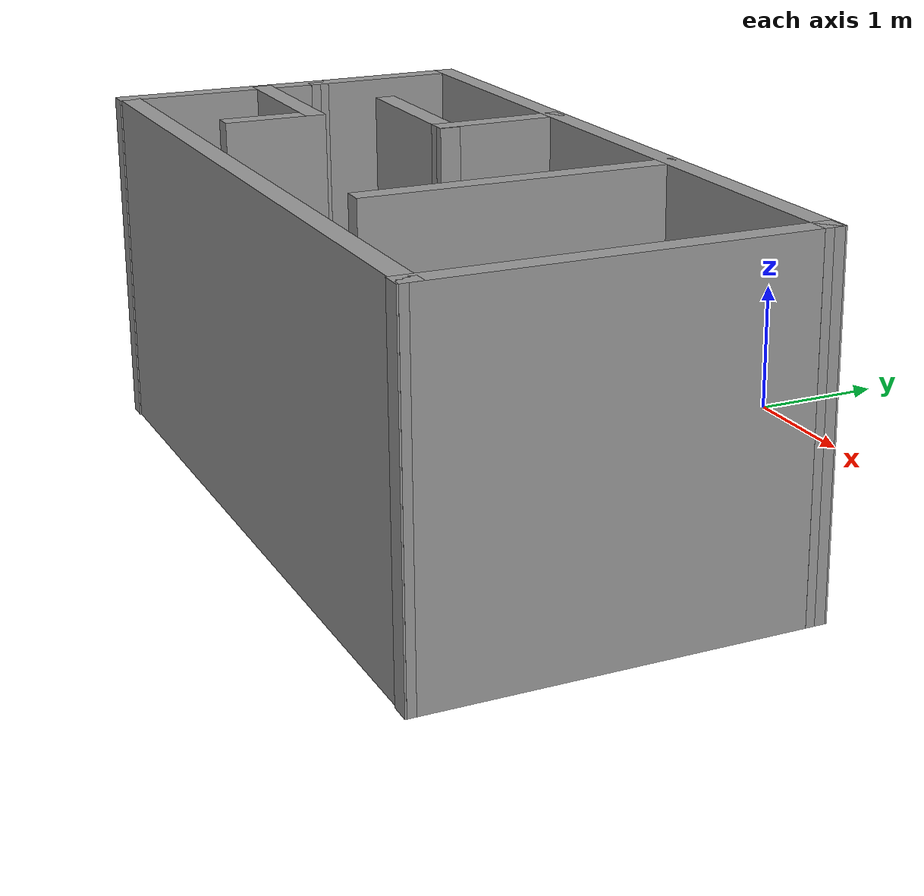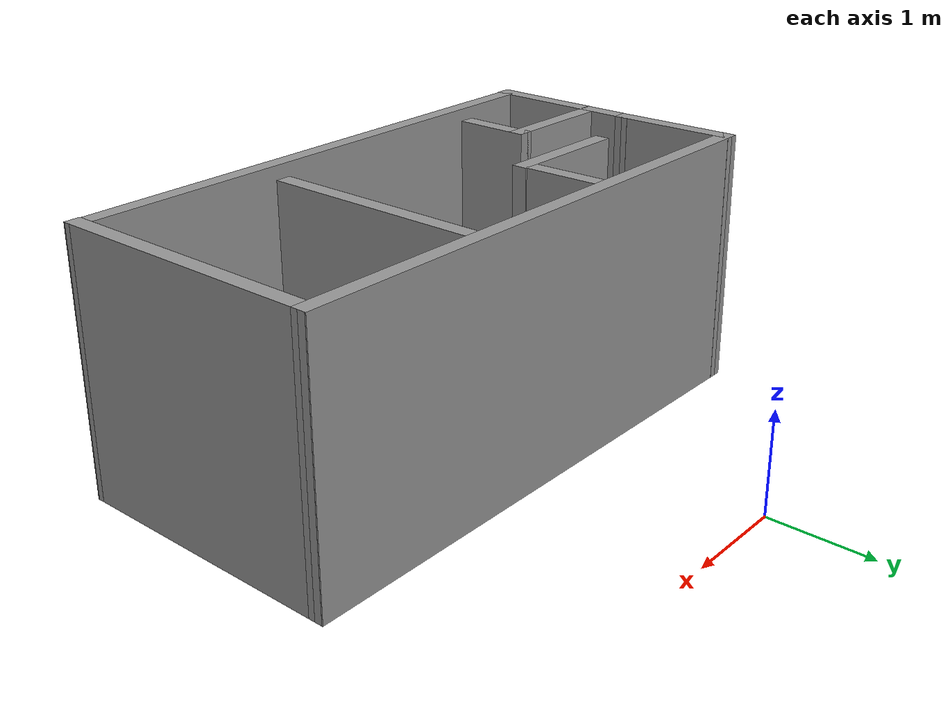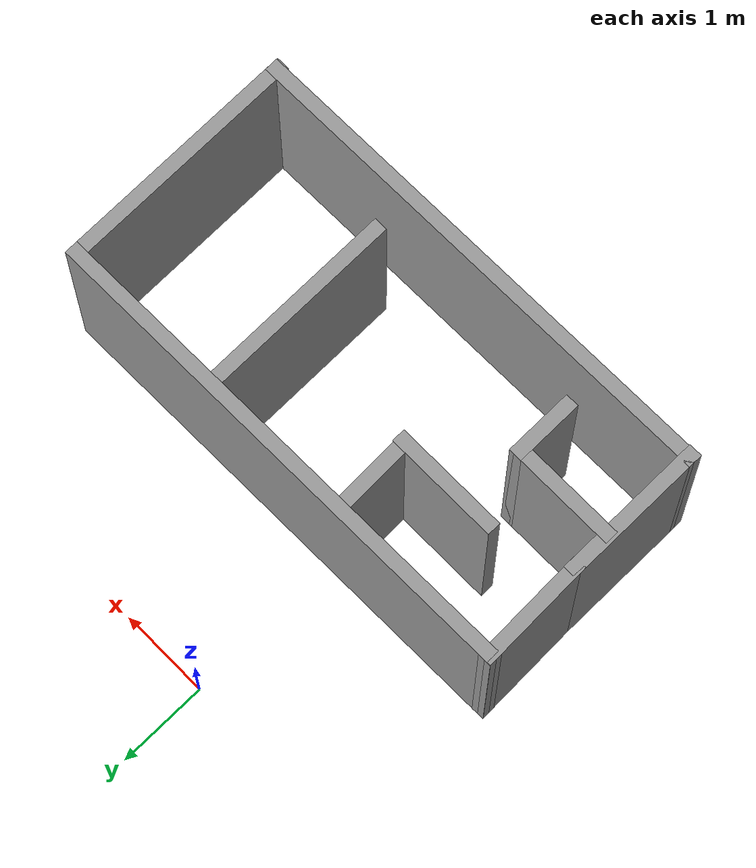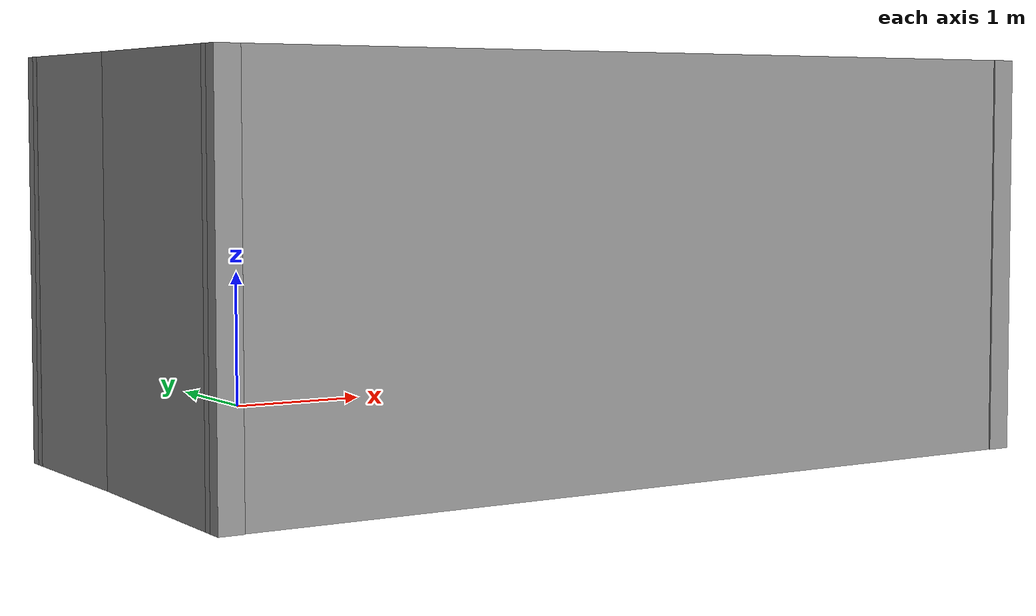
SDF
<?xml version='1.0'?>
<sdf version='1.7'>
  <model name='room'>
    <pose>0.647866 -2.2675 0 0 -0 0</pose>
    <link name='Wall_0'>
      <collision name='Wall_0_Collision'>
        <geometry>
          <box>
            <size>1.2704 0.15 2.5</size>
          </box>
        </geometry>
        <pose>0 0 1.25 0 -0 0</pose>
      </collision>
      <visual name='Wall_0_Visual'>
        <pose>0 0 1.25 0 -0 0</pose>
        <geometry>
          <box>
            <size>1.2704 0.15 2.5</size>
          </box>
        </geometry>
        <material>
          <script>
            <uri>file://media/materials/scripts/gazebo.material</uri>
            <name>Gazebo/Grey</name>
          </script>
          <ambient>1 1 1 1</ambient>
        </material>
        <meta>
          <layer>0</layer>
        </meta>
      </visual>
      <pose>-2.69287 -0.1225 0 0 -0 1.59758</pose>
    </link>
    <link name='Wall_1'>
      <collision name='Wall_1_Collision'>
        <geometry>
          <box>
            <size>5.56701 0.15 2.5</size>
          </box>
        </geometry>
        <pose>0 0 1.25 0 -0 0</pose>
      </collision>
      <visual name='Wall_1_Visual'>
        <pose>0 0 1.25 0 -0 0</pose>
        <geometry>
          <box>
            <size>5.56701 0.15 2.5</size>
          </box>
        </geometry>
        <material>
          <script>
            <uri>file://media/materials/scripts/gazebo.material</uri>
            <name>Gazebo/Grey</name>
          </script>
          <ambient>1 1 1 1</ambient>
        </material>
        <meta>
          <layer>0</layer>
        </meta>
      </visual>
      <pose>0.000634 0.4605 0 0 -0 0.008492</pose>
    </link>
    <link name='Wall_10'>
      <collision name='Wall_10_Collision'>
        <geometry>
          <box>
            <size>0.75 0.15 2.5</size>
          </box>
        </geometry>
        <pose>0 0 1.25 0 -0 0</pose>
      </collision>
      <visual name='Wall_10_Visual'>
        <pose>0 0 1.25 0 -0 0</pose>
        <geometry>
          <box>
            <size>0.75 0.15 2.5</size>
          </box>
        </geometry>
        <material>
          <script>
            <uri>file://media/materials/scripts/gazebo.material</uri>
            <name>Gazebo/Grey</name>
          </script>
          <ambient>1 1 1 1</ambient>
        </material>
        <meta>
          <layer>0</layer>
        </meta>
      </visual>
      <pose>-1.54787 -1.4225 0 0 -0 -1.5708</pose>
    </link>
    <link name='Wall_12'>
      <collision name='Wall_12_Collision'>
        <geometry>
          <box>
            <size>2.25 0.15 2.5</size>
          </box>
        </geometry>
        <pose>0 0 1.25 0 -0 0</pose>
      </collision>
      <visual name='Wall_12_Visual'>
        <pose>0 0 1.25 0 -0 0</pose>
        <geometry>
          <box>
            <size>2.25 0.15 2.5</size>
          </box>
        </geometry>
        <material>
          <script>
            <uri>file://media/materials/scripts/gazebo.material</uri>
            <name>Gazebo/Grey</name>
          </script>
          <ambient>1 1 1 1</ambient>
        </material>
        <meta>
          <layer>0</layer>
        </meta>
      </visual>
      <pose>0.915833 -0.615975 0 0 -0 -1.5708</pose>
    </link>
    <link name='Wall_2'>
      <collision name='Wall_2_Collision'>
        <geometry>
          <box>
            <size>2.75 0.15 2.5</size>
          </box>
        </geometry>
        <pose>0 0 1.25 0 -0 0</pose>
      </collision>
      <visual name='Wall_2_Visual'>
        <pose>0 0 1.25 0 -0 0</pose>
        <geometry>
          <box>
            <size>2.75 0.15 2.5</size>
          </box>
        </geometry>
        <material>
          <script>
            <uri>file://media/materials/scripts/gazebo.material</uri>
            <name>Gazebo/Grey</name>
          </script>
          <ambient>1 1 1 1</ambient>
        </material>
        <meta>
          <layer>0</layer>
        </meta>
      </visual>
      <pose>2.70913 -0.828 0 0 -0 -1.5708</pose>
    </link>
    <link name='Wall_3'>
      <collision name='Wall_3_Collision'>
        <geometry>
          <box>
            <size>5.53701 0.15 2.5</size>
          </box>
        </geometry>
        <pose>0 0 1.25 0 -0 0</pose>
      </collision>
      <visual name='Wall_3_Visual'>
        <pose>0 0 1.25 0 -0 0</pose>
        <geometry>
          <box>
            <size>5.53701 0.15 2.5</size>
          </box>
        </geometry>
        <material>
          <script>
            <uri>file://media/materials/scripts/gazebo.material</uri>
            <name>Gazebo/Grey</name>
          </script>
          <ambient>1 1 1 1</ambient>
        </material>
        <meta>
          <layer>0</layer>
        </meta>
      </visual>
      <pose>0.015634 -2.1495 0 0 -0 -3.12934</pose>
    </link>
    <link name='Wall_4'>
      <collision name='Wall_4_Collision'>
        <geometry>
          <box>
            <size>1.65 0.15 2.5</size>
          </box>
        </geometry>
        <pose>0 0 1.25 0 -0 0</pose>
      </collision>
      <visual name='Wall_4_Visual'>
        <pose>0 0 1.25 0 -0 0</pose>
        <geometry>
          <box>
            <size>1.65 0.15 2.5</size>
          </box>
        </geometry>
        <material>
          <script>
            <uri>file://media/materials/scripts/gazebo.material</uri>
            <name>Gazebo/Grey</name>
          </script>
          <ambient>1 1 1 1</ambient>
        </material>
        <meta>
          <layer>0</layer>
        </meta>
      </visual>
      <pose>-2.67787 -1.4425 0 0 -0 1.5708</pose>
    </link>
    <link name='Wall_6'>
      <collision name='Wall_6_Collision'>
        <geometry>
          <box>
            <size>0.993706 0.15 2.5</size>
          </box>
        </geometry>
        <pose>0 0 1.25 0 -0 0</pose>
      </collision>
      <visual name='Wall_6_Visual'>
        <pose>0 0 1.25 0 -0 0</pose>
        <geometry>
          <box>
            <size>0.993706 0.15 2.5</size>
          </box>
        </geometry>
        <material>
          <script>
            <uri>file://media/materials/scripts/gazebo.material</uri>
            <name>Gazebo/Grey</name>
          </script>
          <ambient>1 1 1 1</ambient>
        </material>
        <meta>
          <layer>0</layer>
        </meta>
      </visual>
      <pose>-0.756366 0.006 0 0 -0 -1.54352</pose>
    </link>
    <link name='Wall_7'>
      <collision name='Wall_7_Collision'>
        <geometry>
          <box>
            <size>1.25 0.15 2.5</size>
          </box>
        </geometry>
        <pose>0 0 1.25 0 -0 0</pose>
      </collision>
      <visual name='Wall_7_Visual'>
        <pose>0 0 1.25 0 -0 0</pose>
        <geometry>
          <box>
            <size>1.25 0.15 2.5</size>
          </box>
        </geometry>
        <material>
          <script>
            <uri>file://media/materials/scripts/gazebo.material</uri>
            <name>Gazebo/Grey</name>
          </script>
          <ambient>1 1 1 1</ambient>
        </material>
        <meta>
          <layer>0</layer>
        </meta>
      </visual>
      <pose>-1.28337 -0.4155 0 0 -0 3.14159</pose>
    </link>
    <link name='Wall_9'>
      <collision name='Wall_9_Collision'>
        <geometry>
          <box>
            <size>1.25 0.15 2.5</size>
          </box>
        </geometry>
        <pose>0 0 1.25 0 -0 0</pose>
      </collision>
      <visual name='Wall_9_Visual'>
        <pose>0 0 1.25 0 -0 0</pose>
        <geometry>
          <box>
            <size>1.25 0.15 2.5</size>
          </box>
        </geometry>
        <material>
          <script>
            <uri>file://media/materials/scripts/gazebo.material</uri>
            <name>Gazebo/Grey</name>
          </script>
          <ambient>1 1 1 1</ambient>
        </material>
        <meta>
          <layer>0</layer>
        </meta>
      </visual>
      <pose>-2.09787 -1.1225 0 0 -0 0</pose>
    </link>
    <static>1</static>
  </model>
</sdf>
